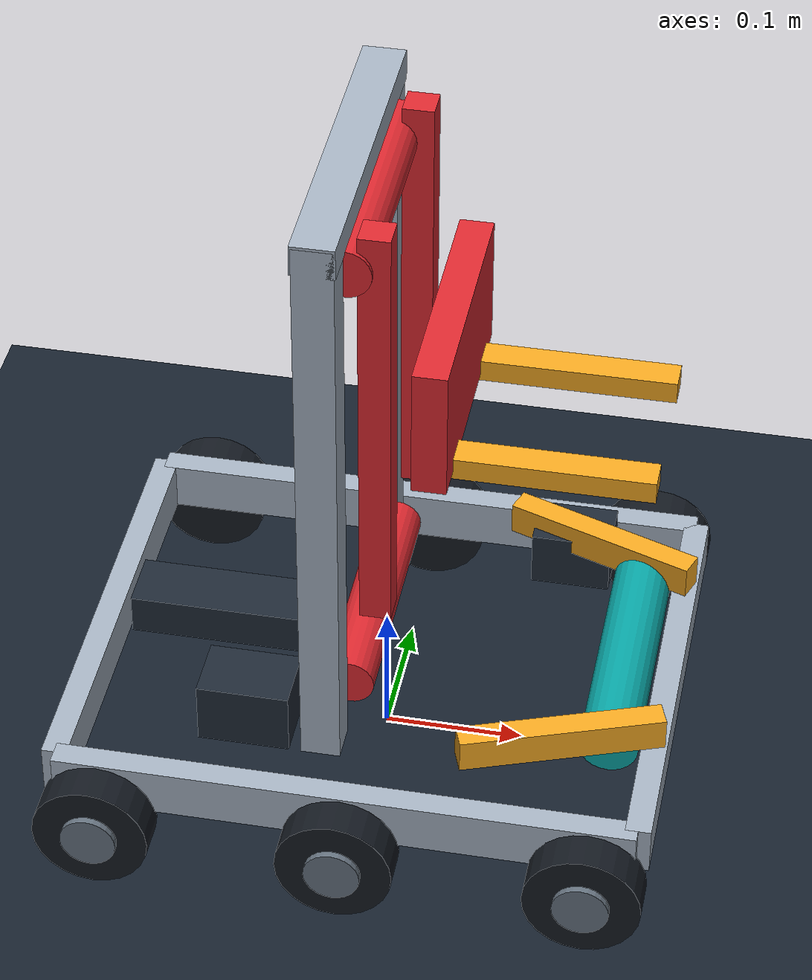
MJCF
<mujoco model="Belt-Mast Cup Fork"><compiler angle="degree" /><visual><global offwidth="800" offheight="600" /><quality offsamples="0" /><headlight ambient=".45 .45 .45" /></visual><worldbody><light pos="0 -1 3" castshadow="false" /><geom type="plane" size="2 2 .1" rgba=".09 .13 .18 1" /><geom type="box" pos="0 -0.165 0.066275" size="0.205 0.009 0.018" euler="0 0 0" rgba=".65 .7 .76 1" contype="0" conaffinity="0" /><geom type="box" pos="0 0.165 0.066275" size="0.205 0.009 0.018" euler="0 0 0" rgba=".65 .7 .76 1" contype="0" conaffinity="0" /><geom type="box" pos="-0.205 0 0.066275" size="0.009 0.165 0.018" euler="0 0 0" rgba=".65 .7 .76 1" contype="0" conaffinity="0" /><geom type="box" pos="0.205 0 0.066275" size="0.009 0.165 0.018" euler="0 0 0" rgba=".65 .7 .76 1" contype="0" conaffinity="0" /><geom type="cylinder" pos="-0.1725 -0.186 0.041275" size="0.041275 0.015" euler="90 0 0" rgba=".08 .1 .13 1" contype="0" conaffinity="0" /><geom type="cylinder" pos="-0.1725 -0.203 0.041275" size="0.019812 0.003" euler="90 0 0" rgba=".4 .45 .5 1" contype="0" conaffinity="0" /><geom type="cylinder" pos="0.0 -0.186 0.041275" size="0.041275 0.015" euler="90 0 0" rgba=".08 .1 .13 1" contype="0" conaffinity="0" /><geom type="cylinder" pos="0.0 -0.203 0.041275" size="0.019812 0.003" euler="90 0 0" rgba=".4 .45 .5 1" contype="0" conaffinity="0" /><geom type="cylinder" pos="0.1725 -0.186 0.041275" size="0.041275 0.015" euler="90 0 0" rgba=".08 .1 .13 1" contype="0" conaffinity="0" /><geom type="cylinder" pos="0.1725 -0.203 0.041275" size="0.019812 0.003" euler="90 0 0" rgba=".4 .45 .5 1" contype="0" conaffinity="0" /><geom type="cylinder" pos="-0.1725 0.186 0.041275" size="0.041275 0.015" euler="90 0 0" rgba=".08 .1 .13 1" contype="0" conaffinity="0" /><geom type="cylinder" pos="-0.1725 0.203 0.041275" size="0.019812 0.003" euler="90 0 0" rgba=".4 .45 .5 1" contype="0" conaffinity="0" /><geom type="cylinder" pos="0.0 0.186 0.041275" size="0.041275 0.015" euler="90 0 0" rgba=".08 .1 .13 1" contype="0" conaffinity="0" /><geom type="cylinder" pos="0.0 0.203 0.041275" size="0.019812 0.003" euler="90 0 0" rgba=".4 .45 .5 1" contype="0" conaffinity="0" /><geom type="cylinder" pos="0.1725 0.186 0.041275" size="0.041275 0.015" euler="90 0 0" rgba=".08 .1 .13 1" contype="0" conaffinity="0" /><geom type="cylinder" pos="0.1725 0.203 0.041275" size="0.019812 0.003" euler="90 0 0" rgba=".4 .45 .5 1" contype="0" conaffinity="0" /><geom type="box" pos="-0.115 0.0 0.091275" size="0.07 0.022 0.015" euler="0 0 0" rgba=".12 .16 .21 1" contype="0" conaffinity="0" /><geom type="box" pos="-0.025 0.105 0.287" size="0.014 0.014 0.215" euler="0.0 0.0 0.0" rgba=".65 .7 .76 1" contype="0" conaffinity="0" /><geom type="box" pos="-0.025 -0.105 0.287" size="0.014 0.014 0.215" euler="0.0 0.0 0.0" rgba=".65 .7 .76 1" contype="0" conaffinity="0" /><geom type="box" pos="-0.025 0.0 0.493" size="0.015 0.119 0.011" euler="0.0 0.0 0.0" rgba=".65 .7 .76 1" contype="0" conaffinity="0" /><geom type="box" pos="0.008 0.076 0.335" size="0.011 0.011 0.1575" euler="0.0 0.0 0.0" rgba=".87 .16 .19 1" contype="0" conaffinity="0" /><geom type="box" pos="0.008 -0.076 0.335" size="0.011 0.011 0.1575" euler="0.0 0.0 0.0" rgba=".87 .16 .19 1" contype="0" conaffinity="0" /><geom type="box" pos="0.045 0.0 0.344" size="0.012 0.09 0.0475" euler="0.0 0.0 0.0" rgba=".87 .16 .19 1" contype="0" conaffinity="0" /><geom type="box" pos="0.116 0.055 0.299" size="0.0775 0.011 0.008" euler="0.0 0.0 0.0" rgba=".96 .66 .13 1" contype="0" conaffinity="0" /><geom type="box" pos="0.116 -0.055 0.299" size="0.0775 0.011 0.008" euler="0.0 0.0 0.0" rgba=".96 .66 .13 1" contype="0" conaffinity="0" /><geom type="box" pos="0.142 0.105 0.105" size="0.0725 0.009 0.012" euler="0.0 0.0 -20.0" rgba=".96 .66 .13 1" contype="0" conaffinity="0" /><geom type="box" pos="0.142 -0.105 0.105" size="0.0725 0.009 0.012" euler="0.0 0.0 20.0" rgba=".96 .66 .13 1" contype="0" conaffinity="0" /><geom type="cylinder" pos="0.174 0.0 0.089" size="0.021 0.0925" euler="90.0 0.0 0.0" rgba=".03 .65 .65 1" contype="0" conaffinity="0" /><geom type="cylinder" pos="-0.01 0.0 0.466" size="0.0175 0.09" euler="90.0 0.0 0.0" rgba=".87 .16 .19 1" contype="0" conaffinity="0" /><geom type="cylinder" pos="-0.01 0.0 0.116" size="0.0175 0.09" euler="90.0 0.0 0.0" rgba=".87 .16 .19 1" contype="0" conaffinity="0" /><geom type="box" pos="-0.078 -0.105 0.104" size="0.0325 0.023 0.023" euler="0.0 0.0 0.0" rgba=".12 .16 .21 1" contype="0" conaffinity="0" /><geom type="box" pos="0.118 0.125 0.083" size="0.029 0.021 0.021" euler="0.0 0.0 0.0" rgba=".12 .16 .21 1" contype="0" conaffinity="0" /></worldbody></mujoco>
